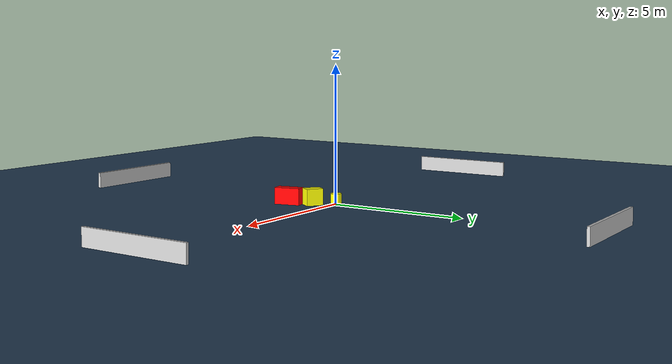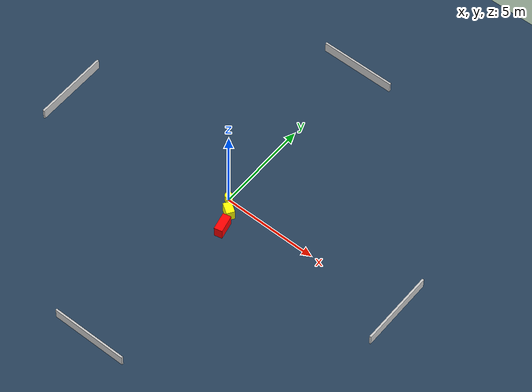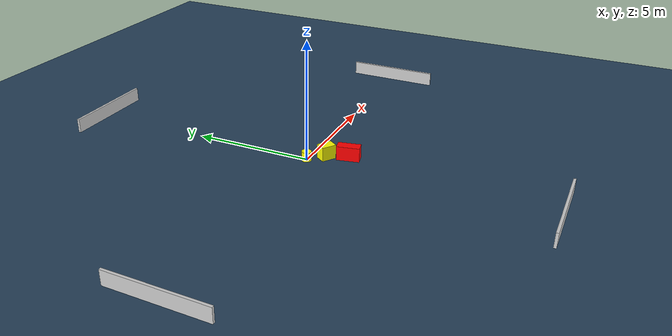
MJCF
<?xml version="1.0" ?>
<mujoco model="generated_environment">
  <option timestep="0.01" integrator="RK4" cone="elliptic"/>
  <default>
    <geom density="1"/>
  </default>
  <asset>
    <texture builtin="gradient" height="3072" name="skybox" rgb1="0.3 0.5 0.7" rgb2="0 0 0" type="skybox" width="512"/>
    <texture builtin="checker" height="300" name="groundplane" rgb1="0.2 0.3 0.4" rgb2="0.1 0.2 0.3" type="2d" width="300"/>
    <material name="groundplane" reflectance="0.2" texrepeat="5 5" texture="groundplane"/>
  </asset>
  <worldbody>
    <light dir="0 0 -1" directional="true" pos="0 0 1.5"/>
    <geom condim="3" friction="0.5 0.005 0.001" material="groundplane" name="floor" pos="0 0 0" size="0 0 0.05" type="plane"/>
    <body name="walls">
      <geom name="wall_1" condim="4" pos="-10.0 0.0 0.3" rgba="0.800000011920929 0.800000011920929 0.800000011920929 1.0" size="0.05 2.0 0.3" type="box"/>
      <geom name="wall_2" condim="4" pos="10.0 0.0 0.3" rgba="0.800000011920929 0.800000011920929 0.800000011920929 1.0" size="0.05 2.0 0.3" type="box"/>
      <geom name="wall_3" condim="4" pos="0.0 -10.0 0.3" rgba="0.800000011920929 0.800000011920929 0.800000011920929 1.0" size="2.0 0.05 0.3" type="box"/>
      <geom name="wall_4" condim="4" pos="0.0 10.0 0.3" rgba="0.800000011920929 0.800000011920929 0.800000011920929 1.0" size="2.0 0.05 0.3" type="box"/>
    </body>
    <body name="robot">
      <joint name="joint_x" type="slide" pos="0 0 0" axis="1 0 0"/>
      <joint name="joint_y" type="slide" pos="0 0 0" axis="0 1 0"/>
      <geom name="robot" type="cylinder" pos="0.0 0.0 0.2" size="0.2 0.2 0.0" mass="5.0" friction="1.0 0.005 0.0001" condim="4" rgba="1.0 1.0 0.0 1.0"/>
    </body>
    <body name="obstacle_1_movable">
      <geom name="obstacle_1_movable" condim="4" pos="0.5284545926330793 -0.6373120442749998 0.3" euler="0 0 235.71293765227244" friction="0.0 0.005 0.001" rgba="1.0 1.0 0.0 1.0" size="0.21596838513570482 0.3095066590968606 0.3" type="box" mass="0.1"/>
      <joint type="free"/>
    </body>
    <body name="obstacle_2_static">
      <geom name="obstacle_2_static" condim="4" pos="0.8366932840208626 -1.4729941348435018 0.3" euler="0 0 282.26430781333335" friction="0.0 0.005 0.001" rgba="1.0 0.0 0.0 1.0" size="0.47199747886678156 0.2152982788066048 0.3" type="box"/>
    </body>
  </worldbody>
  <actuator>
    <motor name="actuator_x" joint="joint_x" gear="1" ctrlrange="-1 1"/>
    <motor name="actuator_y" joint="joint_y" gear="1" ctrlrange="-1 1"/>
  </actuator>
</mujoco>
